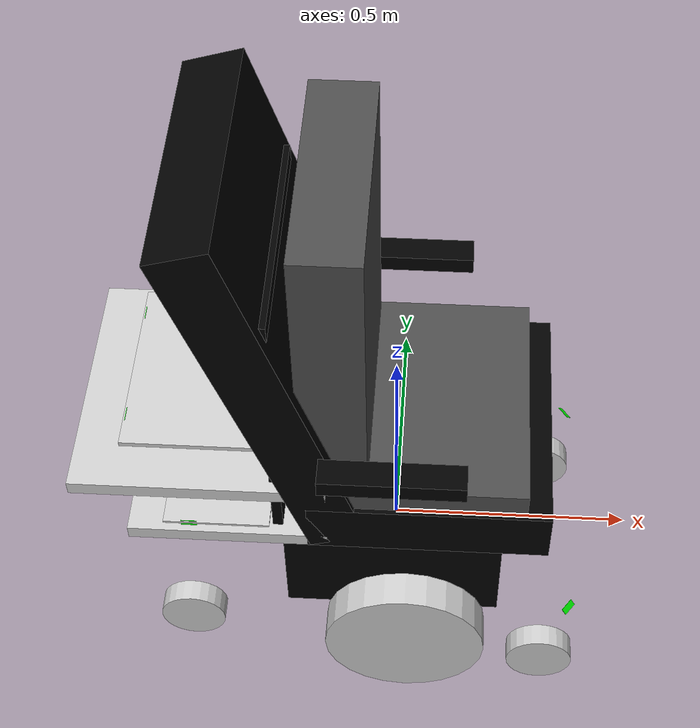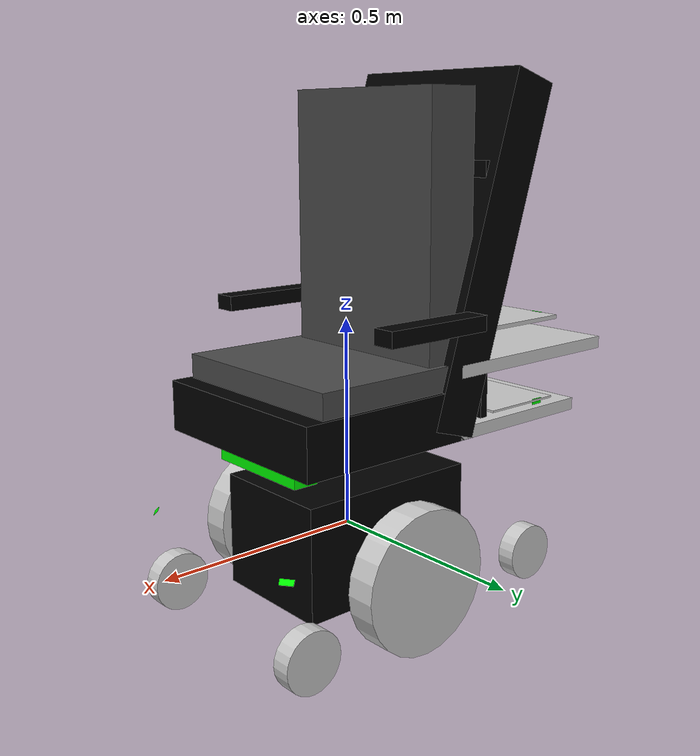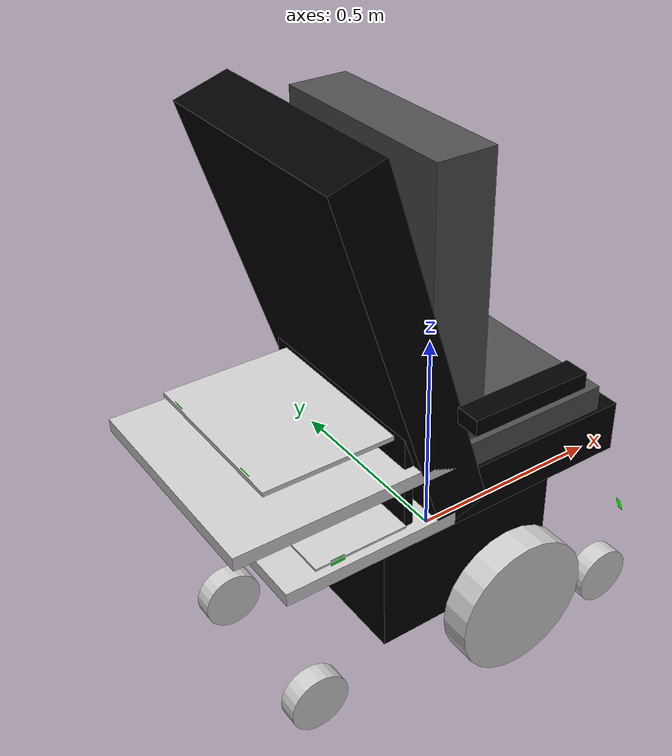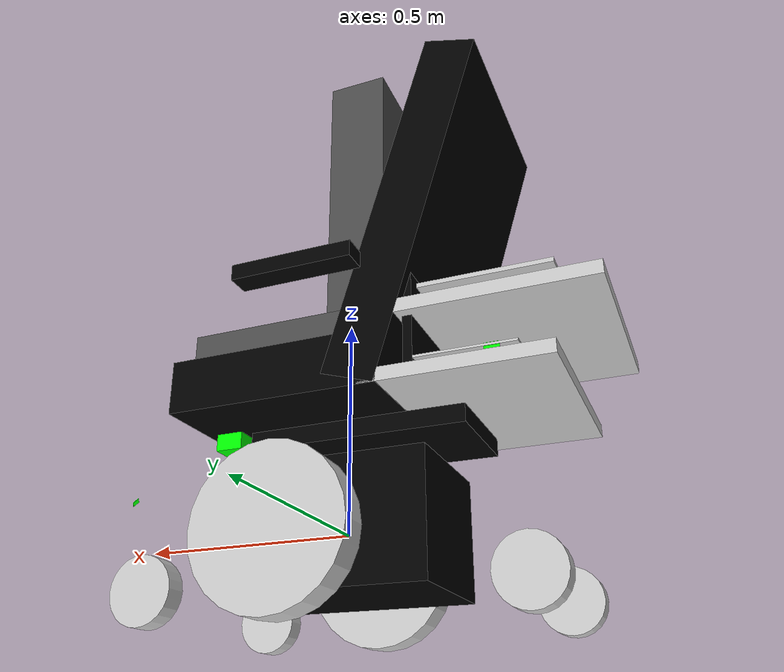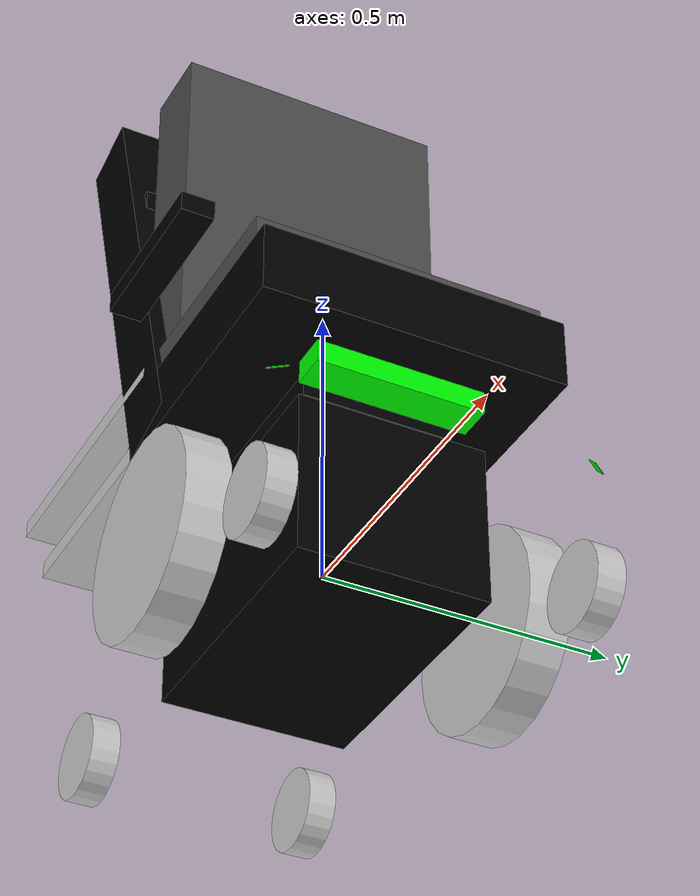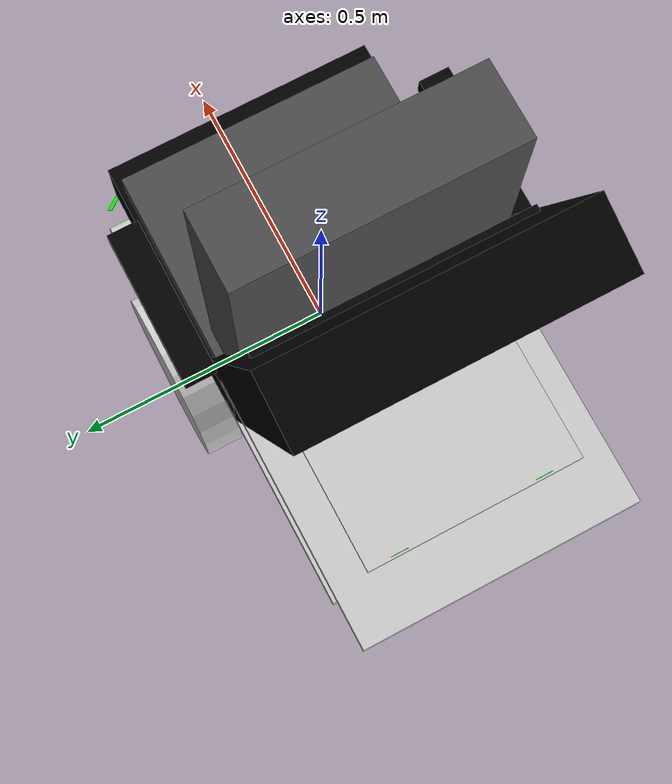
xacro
<?xml version="1.0"?>
<robot xmlns:xacro="http://www.ros.org/wiki/xacro" name="wheelchair">

	<!-- Common and materials -->
	<xacro:include filename="$(find cnbiros_wheelchair_description)/urdf/materials.urdf.xacro" />

	<!-- Base urdf -->
	<xacro:include filename="$(find cnbiros_wheelchair_description)/urdf/base.urdf.xacro" />

	<!-- Upper part urdf -->
	<xacro:include filename="$(find cnbiros_wheelchair_description)/urdf/seat.urdf.xacro" />

	<!-- Sensors urdf -->
	<xacro:include filename="$(find cnbiros_wheelchair_description)/urdf/sensors.urdf.xacro" />

	<!-- Gazebo -->
	<xacro:include filename="$(find cnbiros_wheelchair_description)/urdf/wheelchair.gazebo" />

</robot>

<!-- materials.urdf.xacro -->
<robot>
	<material name="black">
		<color rgba="0 0 0 1"/>
	</material>

	<material name="grey">
		<color rgba="0.8 0.8 0.8 1"/>
	</material>

	<material name="green">
		<color rgba="0 1 0 1"/>
	</material>
</robot>

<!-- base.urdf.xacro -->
<robot xmlns:xacro="http://www.ros.org/wiki/xacro" name="wheelchair">
	<!-- Color are defined in materials.urdf.xacro -->

	<xacro:property name="M_PI" value="3.1415926535897931" />

	<!-- Base origin and size -->
	<xacro:property name="base_size_x"   value="0.462" />
	<xacro:property name="base_size_y"   value="0.310" />
	<xacro:property name="base_size_z"   value="0.270" />

	<xacro:property name="base_origin_x" value="0.000" />
	<xacro:property name="base_origin_y" value="0.000" />
	<xacro:property name="base_origin_z" value="0.000" />

	<xacro:property name="base_offset_z" value="0.073" />

	<!-- Wheels size and offsets-->
	<xacro:property name="wheel_main_radius"      value="0.167" />
	<xacro:property name="wheel_main_width"       value="0.072" />
	<xacro:property name="wheel_secondary_radius" value="0.070" />
	<xacro:property name="wheel_secondary_width"  value="0.046" />

	<xacro:property name="wheel_main_offset_x"    value="0.033" />
	<xacro:property name="wheel_main_offset_y"    value="-0.278" />
	<xacro:property name="wheel_main_offset_z"    value="${wheel_main_radius-base_offset_z-base_size_z/2}" />
	<xacro:property name="wheel_front_offset_x"   value="0.323" />
	<xacro:property name="wheel_front_offset_y"   value="-0.257" />
	<xacro:property name="wheel_front_offset_z"   value="${wheel_secondary_radius-base_offset_z-base_size_z/2}" />
	<xacro:property name="wheel_back_offset_x"    value="-0.436" />
	<xacro:property name="wheel_back_offset_y"    value="-0.187" />
	<xacro:property name="wheel_back_offset_z"    value="${wheel_secondary_radius-base_offset_z-base_size_z/2}" />

	<!-- Upper-base size and offset (related to base link)-->
	<xacro:property name="upperbase_size_x" 	   value="0.491" />
	<xacro:property name="upperbase_size_y" 	   value="0.247" />
	<xacro:property name="upperbase_size_z" 	   value="0.040" />

	<xacro:property name="upperbase_offset_x" 	   value="-0.063" />
	<xacro:property name="upperbase_offset_y" 	   value="0.000" />
	<xacro:property name="upperbase_offset_z" 	   value="0.199" />

	<!-- Back structure size and offset (related to upperbase) -->
	<xacro:property name="backstructure_size_x"		value="0.020" />
	<xacro:property name="backstructure_size_y" 	value="0.460" />
	<xacro:property name="backstructure_size_z" 	value="0.620" />

	<xacro:property name="backstructure_offset_x"	value="-0.162" />
	<xacro:property name="backstructure_offset_y"	value="0.000" />
	<xacro:property name="backstructure_offset_z"	value="0.352" />

	<!-- Armrest and offset (related to upperbase) -->
	<xacro:property name="armrest_size_x"			value="0.278" />
	<xacro:property name="armrest_size_y"			value="0.056" />
	<xacro:property name="armrest_size_z"			value="0.036" />

	<xacro:property name="armrest_offset_x"			value="0.068" />
	<xacro:property name="armrest_offset_y"			value="-0.288" />
	<xacro:property name="armrest_offset_z"			value="0.318" />

	<!-- Bottomseat and offset (related to upperbase) -->
	<xacro:property name="bottomseat_size_x"		value="0.440" />
	<xacro:property name="bottomseat_size_y"		value="0.490" />
	<xacro:property name="bottomseat_size_z"		value="0.130" />

	<xacro:property name="bottomseat_offset_x"		value="0.109" />
	<xacro:property name="bottomseat_offset_y"		value="0.000" />
	<xacro:property name="bottomseat_offset_z"		value="0.151" />

	<!-- Backseat and offset (related to upperbase) -->
	<xacro:property name="backseat_size_x"			value="0.130" />
	<xacro:property name="backseat_size_y"			value="0.460" />
	<xacro:property name="backseat_size_z"			value="0.640" />

	<xacro:property name="backseat_offset_x"		value="-0.047" />
	<xacro:property name="backseat_offset_y"		value="0.000" />
	<xacro:property name="backseat_offset_z"		value="0.502" />

	<!-- Lowerplatform and offset (related to upperbase) -->
	<xacro:property name="lowerplatform_size_x"		value="0.212" />
	<xacro:property name="lowerplatform_size_y"		value="0.491" />
	<xacro:property name="lowerplatform_size_z"		value="0.005" />

	<xacro:property name="lowerplatform_offset_x"	value="-0.284" />
	<xacro:property name="lowerplatform_offset_y"	value="0.000" />
	<xacro:property name="lowerplatform_offset_z"	value="0.083" />

	<!-- Upperplatform and offset (related to upperbase) -->
	<xacro:property name="upperplatform_size_x"		value="0.310" />
	<xacro:property name="upperplatform_size_y"		value="0.391" />
	<xacro:property name="upperplatform_size_z"		value="0.010" />

	<xacro:property name="upperplatform_offset_x"	value="-0.307" />
	<xacro:property name="upperplatform_offset_y"	value="0.000" />
	<xacro:property name="upperplatform_offset_z"	value="0.268" />

<!-- ****************** Wheel macro ************************** -->
	<xacro:macro name="wheel" params="name parent *shape *location">
		<joint name="${name}_joint" type="continuous">
			<axis rpy="0 0 0" xyz="0 1 0"/>
			<parent link="${parent}_link"/>
			<child link="${name}_link"/>
			<xacro:insert_block name="location"/>
    	</joint>
		<link name="${name}_link">
			<inertial>
				<mass value="5"/>
				<inertia
					ixx="1" ixy="0.0" ixz="0.0"
					iyy="1" iyz="0.0"
					izz="1"/>
			</inertial>
			<visual>
				<origin xyz="0 0 0" rpy="0 ${M_PI/2} ${M_PI/2}" />
				<geometry>
					<xacro:insert_block name="shape"/>
				</geometry>
				<material name="grey"/>
			</visual>

			<collision>
				<origin xyz="0 0 0" rpy="0 ${M_PI/2} ${M_PI/2}" />
				<geometry>
					<xacro:insert_block name="shape"/>
				</geometry>
			</collision>
		</link>
	</xacro:macro>

<!-- ******************  Base ************************** -->
	<link name="base_link">
		<inertial>
			<mass value="100"/>
			<inertia
				ixx="1" ixy="0.0" ixz="0.0"
				iyy="1" iyz="0.0"
				izz="1"/>
		</inertial>
		<visual>
			<origin xyz="${base_origin_x} ${base_origin_y} ${base_origin_z}" rpy="0 0 0"/>
			<geometry>
				<box size="${base_size_x} ${base_size_y} ${base_size_z}"/>
			</geometry>
			<material name="black"/>
		</visual>

		<collision>
			<origin xyz="${base_origin_x} ${base_origin_y} ${base_origin_z}" rpy="0 0 0"/>
			<geometry>
				<box size="${base_size_x} ${base_size_y} ${base_size_z}"/>
			</geometry>
		</collision>
	</link>

<!-- ******************  UpperBase ************************** -->
	<joint name="upperbase_joint" type="prismatic">
		<parent link="base_link"/>
		<axis xyz="0 0 1"/>
		<child link="upperbase_link"/>
		<limit effort="1000.0" lower="0.0" upper="0.100" velocity="0.01"/>
		<origin xyz="${upperbase_offset_x} ${upperbase_offset_y} ${upperbase_offset_z}"/>
    </joint>

	<link name="upperbase_link">
		<inertial>
			<mass value="50"/>
			<inertia
				ixx="1" ixy="0.0" ixz="0.0"
				iyy="1" iyz="0.0"
				izz="1"/>
		</inertial>
		<visual>
			<geometry>
				<box size="${upperbase_size_x} ${upperbase_size_y} ${upperbase_size_z}"/>
			</geometry>
			<material name="black"/>
		</visual>

		<collision>
			<geometry>
				<box size="${upperbase_size_x} ${upperbase_size_y} ${upperbase_size_z}"/>
			</geometry>
		</collision>
	</link>

<!-- ******************  BackStructure ************************** -->
	<joint name="backstructure_joint" type="fixed">
		<parent link="upperbase_link"/>
		<child link="backstructure_link"/>
		<origin xyz="${backstructure_offset_x} ${backstructure_offset_y} ${backstructure_offset_z}"/>
    </joint>

	<link name="backstructure_link">
		<inertial>
			<mass value="10"/>
			<inertia
				ixx="1" ixy="0.0" ixz="0.0"
				iyy="1" iyz="0.0"
				izz="1"/>
		</inertial>
		<visual>
			<geometry>
				<box size="${backstructure_size_x} ${backstructure_size_y} ${backstructure_size_z}"/>
			</geometry>
			<material name="black"/>
		</visual>

		<collision>
			<geometry>
				<box size="${backstructure_size_x} ${backstructure_size_y} ${backstructure_size_z}"/>
			</geometry>
		</collision>
	</link>

<!-- ******************  Bottomseat ************************** -->
	<joint name="bottomseat_joint" type="fixed">
		<parent link="upperbase_link"/>
		<child link="bottomseat_link"/>
		<origin xyz="${bottomseat_offset_x} ${bottomseat_offset_y} ${bottomseat_offset_z}"/>
    </joint>

	<link name="bottomseat_link">
		<inertial>
			<mass value="5"/>
			<inertia
				ixx="1" ixy="0.0" ixz="0.0"
				iyy="1" iyz="0.0"
				izz="1"/>
		</inertial>
		<visual>
			<geometry>
				<box size="${bottomseat_size_x} ${bottomseat_size_y} ${bottomseat_size_z}"/>
			</geometry>
			<material name="darkgrey"/>
		</visual>

		<collision>
			<geometry>
				<box size="${bottomseat_size_x} ${bottomseat_size_y} ${bottomseat_size_z}"/>
			</geometry>
		</collision>
	</link>

<!-- ******************  Backseat ************************** -->
	<joint name="backseat_joint" type="fixed">
		<parent link="upperbase_link"/>
		<child link="backseat_link"/>
		<origin xyz="${backseat_offset_x} ${backseat_offset_y} ${backseat_offset_z}"/>
    </joint>

	<link name="backseat_link">
		<inertial>
			<mass value="1"/>
			<inertia
				ixx="1" ixy="0.0" ixz="0.0"
				iyy="1" iyz="0.0"
				izz="1"/>
		</inertial>
		<visual>
			<geometry>
				<box size="${backseat_size_x} ${backseat_size_y} ${backseat_size_z}"/>
			</geometry>
			<material name="darkgrey"/>
		</visual>

		<collision>
			<geometry>
				<box size="${backseat_size_x} ${backseat_size_y} ${backseat_size_z}"/>
			</geometry>
		</collision>
	</link>

<!-- ******************  LowerPlatform ************************** -->
	<joint name="lowerplatform_joint" type="fixed">
		<parent link="upperbase_link"/>
		<child link="lowerplatform_link"/>
		<origin xyz="${lowerplatform_offset_x} ${lowerplatform_offset_y} ${lowerplatform_offset_z}"/>
    </joint>

	<link name="lowerplatform_link">
		<inertial>
			<mass value="1"/>
			<inertia
				ixx="1" ixy="0.0" ixz="0.0"
				iyy="1" iyz="0.0"
				izz="1"/>
		</inertial>
		<visual>
			<geometry>
				<box size="${lowerplatform_size_x} ${lowerplatform_size_y} ${lowerplatform_size_z}"/>
			</geometry>
			<material name="grey"/>
		</visual>

		<collision>
			<geometry>
				<box size="${lowerplatform_size_x} ${lowerplatform_size_y} ${lowerplatform_size_z}"/>
			</geometry>
		</collision>
	</link>

<!-- ******************  UpperPlatform ************************** -->
	<joint name="upperplatform_joint" type="fixed">
		<parent link="upperbase_link"/>
		<child link="upperplatform_link"/>
		<origin xyz="${upperplatform_offset_x} ${upperplatform_offset_y} ${upperplatform_offset_z}"/>
    </joint>

	<link name="upperplatform_link">
		<inertial>
			<mass value="1"/>
			<inertia
				ixx="1" ixy="0.0" ixz="0.0"
				iyy="1" iyz="0.0"
				izz="1"/>
		</inertial>
		<visual>
			<geometry>
				<box size="${upperplatform_size_x} ${upperplatform_size_y} ${upperplatform_size_z}"/>
			</geometry>
			<material name="grey"/>
		</visual>

		<collision>
			<geometry>
				<box size="${upperplatform_size_x} ${upperplatform_size_y} ${upperplatform_size_z}"/>
			</geometry>
		</collision>
	</link>
<!-- ******************  Armrests ************************** -->
	<joint name="armrest_right_joint" type="fixed">
		<parent link="upperbase_link"/>
		<child link="armrest_right_link"/>
		<origin xyz="${armrest_offset_x} ${armrest_offset_y} ${armrest_offset_z}"/>
    </joint>

	<link name="armrest_right_link">
		<inertial>
			<mass value="0.5"/>
			<inertia
				ixx="1" ixy="0.0" ixz="0.0"
				iyy="1" iyz="0.0"
				izz="1"/>
		</inertial>
		<visual>
			<geometry>
				<box size="${armrest_size_x} ${armrest_size_y} ${armrest_size_z}"/>
			</geometry>
			<material name="black"/>
		</visual>

		<collision>
			<geometry>
				<box size="${armrest_size_x} ${armrest_size_y} ${armrest_size_z}"/>
			</geometry>
		</collision>
	</link>

	<joint name="armrest_left_joint" type="fixed">
		<parent link="upperbase_link"/>
		<child link="armrest_left_link"/>
		<origin xyz="${armrest_offset_x} ${-armrest_offset_y} ${armrest_offset_z}"/>
    </joint>

	<link name="armrest_left_link">
		<inertial>
			<mass value="0.5"/>
			<inertia
				ixx="1" ixy="0.0" ixz="0.0"
				iyy="1" iyz="0.0"
				izz="1"/>
		</inertial>
		<visual>
			<geometry>
				<box size="${armrest_size_x} ${armrest_size_y} ${armrest_size_z}"/>
			</geometry>
			<material name="black"/>
		</visual>

		<collision>
			<geometry>
				<box size="${armrest_size_x} ${armrest_size_y} ${armrest_size_z}"/>
			</geometry>
		</collision>
	</link>

<!-- ****************** Wheels ************************** -->
	<!-- Wheelchair Wheel0 - Link -->
	<xacro:wheel name="wheel0" parent="base">
		<cylinder radius="${wheel_main_radius}" length="${wheel_main_width}"/>
		<origin xyz="${wheel_main_offset_x} ${wheel_main_offset_y} ${wheel_main_offset_z}" rpy="0 0 0"/>
	</xacro:wheel>

	<!-- Wheelchair Wheel1 - Link -->
	<xacro:wheel name="wheel1" parent="base">
		<cylinder radius="${wheel_main_radius}" length="${wheel_main_width}"/>
		<origin xyz="${wheel_main_offset_x} ${-wheel_main_offset_y} ${wheel_main_offset_z}" rpy="0 0 0"/>
	</xacro:wheel>

	<!-- Wheelchair BackWheel0 - Link -->
	<xacro:wheel name="backwheel0" parent="base">
		<cylinder radius="${wheel_secondary_radius}" length="${wheel_secondary_width}"/>
		<origin xyz="${wheel_back_offset_x} ${wheel_back_offset_y} ${wheel_back_offset_z}" rpy="0 0 0"/>
	</xacro:wheel>

	<!-- Wheelchair BackWheel1 - Link -->
	<xacro:wheel name="backwheel1" parent="base">
		<cylinder radius="${wheel_secondary_radius}" length="${wheel_secondary_width}"/>
		<origin xyz="${wheel_back_offset_x} ${-wheel_back_offset_y} ${wheel_back_offset_z}" rpy="0 0 0"/>
	</xacro:wheel>

	<!-- Wheelchair FrontWheel0 - Link -->
	<xacro:wheel name="frontwheel0" parent="base">
		<cylinder radius="${wheel_secondary_radius}" length="${wheel_secondary_width}"/>
		<origin xyz="${wheel_front_offset_x} ${wheel_front_offset_y} ${wheel_front_offset_z}" rpy="0 0 0"/>
	</xacro:wheel>

	<!-- Wheelchair FrontWheel1 - Link -->
	<xacro:wheel name="frontwheel1" parent="base">
		<cylinder radius="${wheel_secondary_radius}" length="${wheel_secondary_width}"/>
		<origin xyz="${wheel_front_offset_x} ${-wheel_front_offset_y} ${wheel_front_offset_z}" rpy="0 0 0"/>
	</xacro:wheel>

</robot>

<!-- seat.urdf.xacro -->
<robot xmlns:xacro="http://www.ros.org/wiki/xacro" name="wheelchair">
	<!-- Color are defined in materials.urdf.xacro -->

	<xacro:property name="seat_size_x"		   value="0.48" />
	<xacro:property name="seat_size_y"   	   value="0.51" />
	<xacro:property name="seat_size_z"   	   value="0.12" />
	<xacro:property name="seat_origin_x" 	   value="0.075" />
	<xacro:property name="seat_origin_y" 	   value="0.00" />
	<xacro:property name="seat_origin_z" 	   value="0.2975" />
	<xacro:property name="seat_joint_effort"   value="1000.0" />
	<xacro:property name="seat_joint_lower"    value="0.0" />
	<xacro:property name="seat_joint_upper"    value="0.15" />
	<xacro:property name="seat_joint_velocity" value="0.01" />

	<xacro:property name="back_size_x"		   value="0.12" />
	<xacro:property name="back_size_y"   	   value="0.51" />
	<xacro:property name="back_size_z"   	   value="0.83" />
	<xacro:property name="back_origin_x" 	   value="-0.30" />
	<xacro:property name="back_origin_y" 	   value="0.00" />
	<xacro:property name="back_origin_z" 	   value="0.355" />
	<xacro:property name="back_origin_pinch"   value="-0.3" />
	<xacro:property name="back_joint_effort"   value="1000.0" />
	<xacro:property name="back_joint_lower"    value="0.0" />
	<xacro:property name="back_joint_upper"    value="0.15" />
	<xacro:property name="back_joint_velocity" value="0.01" />

	<xacro:property name="platform_up_size_x"       value="0.50" />
	<xacro:property name="platform_up_size_y"       value="${seat_size_y}" />
	<xacro:property name="platform_up_size_z"       value="0.03" />
	<xacro:property name="platform_up_origin_x"     value="-0.45" />
	<xacro:property name="platform_up_origin_y"     value="0.0" />
	<xacro:property name="platform_up_origin_z"     value="0.1" />
	<xacro:property name="platform_down_size_x"     value="0.40" />
	<xacro:property name="platform_down_size_y"     value="${seat_size_y}" />
	<xacro:property name="platform_down_size_z"     value="0.03" />
	<xacro:property name="platform_down_origin_x"   value="-0.4" />
	<xacro:property name="platform_down_origin_y"   value="0.0" />
	<xacro:property name="platform_down_origin_z"   value="-0.0445" />

<!-- ****************** Platform macro ************************** -->
	<xacro:macro name="platform" params="name parent *shape *location">
		<joint name="${name}_joint" type="fixed">
			<parent link="${parent}_link"/>
			<child link="${name}_link"/>
			<xacro:insert_block name="location"/>
    	</joint>

		<link name="${name}_link">
			<visual>
				<origin xyz="0 0 0" rpy="0 0 0" />
				<geometry>
					<xacro:insert_block name="shape"/>
				</geometry>
				<material name="grey"/>
			</visual>

			<collision>
				<origin xyz="0 0 0" rpy="0 0 0" />
				<geometry>
					<xacro:insert_block name="shape"/>
				</geometry>
			</collision>
		</link>
	</xacro:macro>

<!-- ****************** Platforms ************************** -->
	<xacro:platform name="platform_up" parent="seat">
		<box size="${platform_up_size_x} ${platform_up_size_y} ${platform_up_size_z}"/>
		<origin xyz="${platform_up_origin_x} ${platform_up_origin_y} ${platform_up_origin_z}" rpy="0 0 0"/>
	</xacro:platform>

	<xacro:platform name="platform_down" parent="seat">
		<box size="${platform_down_size_x} ${platform_down_size_y} ${platform_down_size_z}"/>
		<origin xyz="${platform_down_origin_x} ${platform_down_origin_y} ${platform_down_origin_z}" rpy="0 0 0"/>
	</xacro:platform>

<!-- ****************** Seats ************************** -->
	<!-- Wheelchair Seat -->
	<link name="seat_link">
		<visual>
			<geometry>
				<box size="${seat_size_x} ${seat_size_y} ${seat_size_z}"/>
			</geometry>
			<material name="black"/>
		</visual>
	</link>

	<joint name="seat_joint" type="prismatic">
		<axis xyz="0 0 1"/>
		<limit effort="${seat_joint_effort}" lower="${seat_joint_lower}" upper="${seat_joint_upper}" velocity="${seat_joint_velocity}"/>
		<parent link="base_link"/>
		<child link="seat_link"/>
		<origin xyz="${seat_origin_x} ${seat_origin_y} ${seat_origin_z}" rpy="0 0 0"/>
    </joint>

	<!-- Wheelchair Back  -->
	<link name="back_link">
		<visual>
			<geometry>
				<box size="${back_size_x} ${back_size_y} ${back_size_z}"/>
			</geometry>
			<material name="black"/>
		</visual>
	</link>

	<joint name="back_joint" type="fixed">
		<parent link="seat_link"/>
		<child link="back_link"/>
		<origin xyz="${back_origin_x} ${back_origin_y} ${back_origin_z}" rpy="0 ${back_origin_pinch} 0"/>
    </joint>

</robot>

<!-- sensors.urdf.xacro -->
<robot xmlns:xacro="http://www.ros.org/wiki/xacro" name="wheelchair">
	<!-- Color are defined in materials.urdf.xacro -->

	<!-- Ultrasonic sizes -->
	<xacro:property name="sonar_size_x"		value="0.001" />
	<xacro:property name="sonar_size_y"		value="0.032" />
	<xacro:property name="sonar_size_z"		value="0.014" />

	<!-- Kinect size -->
	<xacro:property name="kinect_size_x"	value="0.061" />
	<xacro:property name="kinect_size_y"	value="0.280" />
	<xacro:property name="kinect_size_z"	value="0.038" />

	<!-- Ultrasonic offset (with respect to base (e2, ec) or to upperbase) -->
	<xacro:property name="sonar_0xe0_x"		value="0.324" />	<!-- TEMP -->
	<xacro:property name="sonar_0xe0_y"   	value="-0.139" />	<!-- TEMP -->
	<xacro:property name="sonar_0xe0_z"   	value="0.075" />	<!-- TEMP -->

	<xacro:property name="sonar_0xe2_x"   	value="0.372" />	<!-- to base -->
	<xacro:property name="sonar_0xe2_y"   	value="-0.257" />	<!-- to base -->
	<xacro:property name="sonar_0xe2_z"   	value="0.048" />	<!-- to base -->

	<xacro:property name="sonar_0xe4_x"   	value="0.168" />
	<xacro:property name="sonar_0xe4_y"   	value="-0.240" />
	<xacro:property name="sonar_0xe4_z"   	value="0.075" />

	<xacro:property name="sonar_0xe6_x"   	value="-0.338" />
	<xacro:property name="sonar_0xe6_y"   	value="-0.243" />
	<xacro:property name="sonar_0xe6_z"   	value="0.080" />

	<xacro:property name="sonar_0xe8_x"   	value="-0.458" />
	<xacro:property name="sonar_0xe8_y"   	value="-0.126" />
	<xacro:property name="sonar_0xe8_z"   	value="0.267" />

	<xacro:property name="sonar_0xea_x"   	value="0.324" />	<!-- TEMP -->
	<xacro:property name="sonar_0xea_y"   	value="0.139" />	<!-- TEMP -->
	<xacro:property name="sonar_0xea_z"   	value="0.075" />	<!-- TEMP -->

	<xacro:property name="sonar_0xec_x"   	value="0.372" />	<!-- to base -->
	<xacro:property name="sonar_0xec_y"   	value="0.257" />	<!-- to base -->
	<xacro:property name="sonar_0xec_z"   	value="0.048" />	<!-- to base -->

	<xacro:property name="sonar_0xee_x"   	value="0.168" />
	<xacro:property name="sonar_0xee_y"   	value="0.240" />
	<xacro:property name="sonar_0xee_z"   	value="0.075" />

	<xacro:property name="sonar_0xf0_x"   	value="-0.338" />
	<xacro:property name="sonar_0xf0_y"   	value="0.243" />
	<xacro:property name="sonar_0xf0_z"   	value="0.080" />

	<xacro:property name="sonar_0xf2_x"   	value="-0.458" />
	<xacro:property name="sonar_0xf2_y"   	value="0.136" />
	<xacro:property name="sonar_0xf2_z"   	value="0.267" />

	<!-- Kinect offset (with respect to upperbase) -->
	<xacro:property name="kinect_offset_x"	value="0.294" />	<!-- TEMP -->
	<xacro:property name="kinect_offset_y" 	value="0.000" />	<!-- TEMP -->
	<xacro:property name="kinect_offset_z" 	value="0.002" />	<!-- TEMP -->

<!-- ****************** Sonar macro ***************************** -->

	<xacro:macro name="sonar" params="name parent *location">
		<joint name="${name}_joint" type="fixed">
			<parent link="${parent}_link"/>
			<child link="${name}_link"/>
			<xacro:insert_block name="location"/>
    	</joint>
		<link name="${name}_link">
			<inertial>
				<mass value="1e-6"/>
				<inertia
					ixx="1e-6" ixy="0.0" ixz="0.0"
					iyy="1e-6" iyz="0.0"
					izz="1e-6"/>
			</inertial>
			<visual>
				<geometry>
					<box size="${sonar_size_x} ${sonar_size_y} ${sonar_size_z}" />
				</geometry>
				<material name="green"/>
			</visual>

			<collision>
				<geometry>
					<box size="${sonar_size_x} ${sonar_size_y} ${sonar_size_z}" />
				</geometry>
			</collision>
		</link>
	</xacro:macro>

<!-- ****************** Sonars ***************************** -->

	<!-- Sonar 0xe0 -->
	<xacro:sonar name="sonar_0xe0" parent="upperbase" >
		<origin xyz="${sonar_0xe0_x} ${sonar_0xe0_y} ${sonar_0xe0_z}" />
	</xacro:sonar>

	<!-- Sonar 0xe2 -->
	<xacro:sonar name="sonar_0xe2" parent="base" >
		<origin xyz="${sonar_0xe2_x} ${sonar_0xe2_y} ${sonar_0xe2_z}" rpy="0 ${-M_PI/4} ${-M_PI/5}"/>
	</xacro:sonar>

	<!-- Sonar 0xe4 -->
	<xacro:sonar name="sonar_0xe4" parent="upperbase" >
		<origin xyz="${sonar_0xe4_x} ${sonar_0xe4_y} ${sonar_0xe4_z}" rpy="0 0 ${-M_PI/2}" />
	</xacro:sonar>

	<!-- Sonar 0xe6 -->
	<xacro:sonar name="sonar_0xe6" parent="upperbase" >
		<origin xyz="${sonar_0xe6_x} ${sonar_0xe6_y} ${sonar_0xe6_z}" rpy="0 0 ${-M_PI/2}"/>
	</xacro:sonar>

	<!-- Sonar 0xe8 -->
	<xacro:sonar name="sonar_0xe8" parent="upperbase" >
		<origin xyz="${sonar_0xe8_x} ${sonar_0xe8_y} ${sonar_0xe8_z}" rpy="0 0 ${-M_PI}"/>
	</xacro:sonar>

	<!-- Sonar 0xea -->
	<xacro:sonar name="sonar_0xea" parent="upperbase" >
		<origin xyz="${sonar_0xea_x} ${sonar_0xea_y} ${sonar_0xea_z}" />
	</xacro:sonar>

	<!-- Sonar 0xec -->
	<xacro:sonar name="sonar_0xec" parent="base" >
		<origin xyz="${sonar_0xec_x} ${sonar_0xec_y} ${sonar_0xec_z}" rpy="0 ${-M_PI/4} ${M_PI/5}"/>
	</xacro:sonar>

	<!-- Sonar 0xee -->
	<xacro:sonar name="sonar_0xee" parent="upperbase" >
		<origin xyz="${sonar_0xee_x} ${sonar_0xee_y} ${sonar_0xee_z}" rpy="0 0 ${M_PI/2}"/>
	</xacro:sonar>

	<!-- Sonar 0xf0 -->
	<xacro:sonar name="sonar_0xf0" parent="upperbase" >
		<origin xyz="${sonar_0xf0_x} ${sonar_0xf0_y} ${sonar_0xf0_z}" rpy="0 0 ${M_PI/2}"/>
	</xacro:sonar>

	<!-- Sonar 0xf2 -->
	<xacro:sonar name="sonar_0xf2" parent="upperbase" >
		<origin xyz="${sonar_0xf2_x} ${sonar_0xf2_y} ${sonar_0xf2_z}" rpy="0 0 ${-M_PI}"/>
	</xacro:sonar>

<!-- ****************** Kinect ***************************** -->
	<!-- Kinect - Link -->
	<link name="camera_link">
		<inertial>
			<mass value="0.5"/>
			<inertia
				ixx="1e-6" ixy="0.0" ixz="0.0"
				iyy="1e-6" iyz="0.0"
				izz="1e-6"/>
		</inertial>
		<visual>
			<geometry>
				<box size="${kinect_size_x} ${kinect_size_y} ${kinect_size_z}" />
			</geometry>
			<material name="green"/>
		</visual>
		<collision>
			<geometry>
				<box size="${kinect_size_x} ${kinect_size_y} ${kinect_size_z}" />
			</geometry>
		</collision>
	</link>
	<!-- Kinect - Joint -->
	<joint name="camera_joint" type="fixed">
		<parent link="upperbase_link"/>
		<child link="camera_link"/>
		<origin xyz="${kinect_offset_x} ${kinect_offset_y} ${kinect_offset_z}"/>
    </joint>
</robot>
